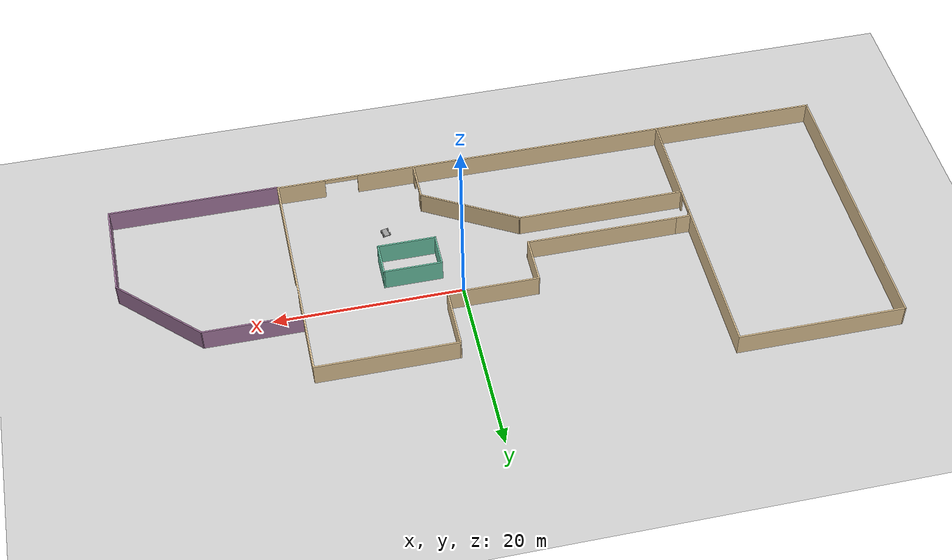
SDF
<sdf version="1.6">
 <world name="default">
  <model name="ground_plane">
   <static>1</static>
   <link name="link">
    <collision name="collision">
     <geometry><plane><normal>0 0 1</normal><size>100 100</size></plane></geometry>
     <surface>
      <contact><collide_bitmask>65535</collide_bitmask></contact>
      <friction><ode><mu>100</mu><mu2>50</mu2></ode></friction>
     </surface>
    </collision>
    <visual name="visual">
     <cast_shadows>0</cast_shadows>
     <geometry><plane><normal>0 0 1</normal><size>100 100</size></plane></geometry>
     <material>
      <script><uri>file://media/materials/scripts/gazebo.material</uri><name>Gazebo/Grey</name></script>
     </material>
    </visual>
   </link>
  </model>
  <model name="office">
   <pose>-3.92011 -1.24039 0 0 -0 0</pose>
   <link name="Wall_0">
    <collision name="Wall_0_Collision">
     <geometry><box><size>5.22347 0.15 2.5</size></box></geometry>
     <pose>0 0 1.25 0 -0 0</pose>
    </collision>
    <visual name="Wall_0_Visual">
     <pose>0 0 1.25 0 -0 0</pose>
     <geometry><box><size>5.22347 0.15 2.5</size></box></geometry>
     <material>
      <script><uri>file://media/materials/scripts/gazebo.material</uri><name>Gazebo/Grey</name></script>
      <ambient>0.921569 0.807843 0.615686 1</ambient>
     </material>
     <meta><layer>0</layer></meta>
    </visual>
    <pose>-3.65319 0.80369 0 0 -0 1.56555</pose>
   </link>
   <link name="Wall_1">
    <collision name="Wall_1_Collision">
     <geometry><box><size>9.75 0.15 2.5</size></box></geometry>
     <pose>0 0 1.25 0 -0 0</pose>
    </collision>
    <visual name="Wall_1_Visual">
     <pose>0 0 1.25 0 -0 0</pose>
     <geometry><box><size>9.75 0.15 2.5</size></box></geometry>
     <material>
      <script><uri>file://media/materials/scripts/gazebo.material</uri><name>Gazebo/Grey</name></script>
      <ambient>0.921569 0.807843 0.615686 1</ambient>
     </material>
     <meta><layer>0</layer></meta>
    </visual>
    <pose>1.16011 3.34039 0 0 -0 0</pose>
   </link>
   <link name="Wall_12">
    <collision name="Wall_12_Collision">
     <geometry><box><size>16.25 0.15 2.5</size></box></geometry>
     <pose>0 0 1.25 0 -0 0</pose>
    </collision>
    <visual name="Wall_12_Visual">
     <pose>0 0 1.25 0 -0 0</pose>
     <geometry><box><size>16.25 0.15 2.5</size></box></geometry>
     <material>
      <script><uri>file://media/materials/scripts/gazebo.material</uri><name>Gazebo/Grey</name></script>
      <ambient>0.921569 0.807843 0.615686 1</ambient>
     </material>
     <meta><layer>0</layer></meta>
    </visual>
    <pose>-11.7165 -1.75961 0 0 -0 3.14159</pose>
   </link>
   <link name="Wall_2">
    <collision name="Wall_2_Collision">
     <geometry><box><size>6.75 0.15 2.5</size></box></geometry>
     <pose>0 0 1.25 0 -0 0</pose>
    </collision>
    <visual name="Wall_2_Visual">
     <pose>0 0 1.25 0 -0 0</pose>
     <geometry><box><size>6.75 0.15 2.5</size></box></geometry>
     <material>
      <script><uri>file://media/materials/scripts/gazebo.material</uri><name>Gazebo/Grey</name></script>
      <ambient>0.921569 0.807843 0.615686 1</ambient>
     </material>
     <meta><layer>0</layer></meta>
    </visual>
    <pose>5.96011 6.64039 0 0 -0 1.5708</pose>
   </link>
   <link name="Wall_25">
    <collision name="Wall_25_Collision">
     <geometry><box><size>18.25 0.15 2.5</size></box></geometry>
     <pose>0 0 1.25 0 -0 0</pose>
    </collision>
    <visual name="Wall_25_Visual">
     <pose>0 0 1.25 0 -0 0</pose>
     <geometry><box><size>18.25 0.15 2.5</size></box></geometry>
     <material>
      <script><uri>file://media/materials/scripts/gazebo.material</uri><name>Gazebo/Grey</name></script>
      <ambient>0.678431 0.498039 0.658824 1</ambient>
     </material>
     <meta><layer>0</layer></meta>
    </visual>
    <pose>29.9204 -15.3405 0 0 -0 0</pose>
   </link>
   <link name="Wall_27">
    <pose>20.8453 -6.08461 0 0 -0 -1.56696</pose>
    <visual name="Wall_27_Visual_0">
     <pose>-7.53879 0 1.25 0 -0 0</pose>
     <geometry><box><size>3.42242 0.15 2.5</size></box></geometry>
     <material>
      <script><uri>file://media/materials/scripts/gazebo.material</uri><name>Gazebo/Grey</name></script>
      <ambient>0.921569 0.807843 0.615686 1</ambient>
     </material>
     <meta><layer>0</layer></meta>
    </visual>
    <collision name="Wall_27_Collision_0">
     <geometry><box><size>3.42242 0.15 2.5</size></box></geometry>
     <pose>-7.53879 0 1.25 0 -0 0</pose>
    </collision>
    <visual name="Wall_27_Visual_1">
     <pose>3.16381 0 1.25 0 -0 0</pose>
     <geometry><box><size>12.1724 0.15 2.5</size></box></geometry>
     <material>
      <script><uri>file://media/materials/scripts/gazebo.material</uri><name>Gazebo/Grey</name></script>
      <ambient>0.921569 0.807843 0.615686 1</ambient>
     </material>
     <meta><layer>0</layer></meta>
    </visual>
    <collision name="Wall_27_Collision_1">
     <geometry><box><size>12.1724 0.15 2.5</size></box></geometry>
     <pose>3.16381 0 1.25 0 -0 0</pose>
    </collision>
    <visual name="Wall_27_Visual_2">
     <pose>-4.37498 0 2.25 0 -0 0</pose>
     <geometry><box><size>2.90519 0.15 0.5</size></box></geometry>
     <material>
      <script><uri>file://media/materials/scripts/gazebo.material</uri><name>Gazebo/Grey</name></script>
      <ambient>0.921569 0.807843 0.615686 1</ambient>
     </material>
     <meta><layer>0</layer></meta>
    </visual>
    <collision name="Wall_27_Collision_2">
     <geometry><box><size>2.90519 0.15 0.5</size></box></geometry>
     <pose>-4.37498 0 2.25 0 -0 0</pose>
    </collision>
   </link>
   <link name="Wall_28">
    <collision name="Wall_28_Collision">
     <geometry><box><size>18 0.15 2.5</size></box></geometry>
     <pose>0 0 1.25 0 -0 0</pose>
    </collision>
    <visual name="Wall_28_Visual">
     <pose>0 0 1.25 0 -0 0</pose>
     <geometry><box><size>18 0.15 2.5</size></box></geometry>
     <material>
      <script><uri>file://media/materials/scripts/gazebo.material</uri><name>Gazebo/Grey</name></script>
      <ambient>0.921569 0.807843 0.615686 1</ambient>
     </material>
     <meta><layer>0</layer></meta>
    </visual>
    <pose>-12.5173 -5.35829 0 0 -0 0</pose>
   </link>
   <link name="Wall_3">
    <collision name="Wall_3_Collision">
     <geometry><box><size>15 0.15 2.5</size></box></geometry>
     <pose>0 0 1.25 0 -0 0</pose>
    </collision>
    <visual name="Wall_3_Visual">
     <pose>0 0 1.25 0 -0 0</pose>
     <geometry><box><size>15 0.15 2.5</size></box></geometry>
     <material>
      <script><uri>file://media/materials/scripts/gazebo.material</uri><name>Gazebo/Grey</name></script>
      <ambient>0.921569 0.807843 0.615686 1</ambient>
     </material>
     <meta><layer>0</layer></meta>
    </visual>
    <pose>13.3851 9.94039 0 0 -0 0</pose>
   </link>
   <link name="Wall_31">
    <pose>-9.07971 -15.2596 0 0 -0 3.14159</pose>
    <visual name="Wall_31_Visual_0">
     <pose>-27.4217 0 1.25 0 -0 0</pose>
     <geometry><box><size>5.15663 0.15 2.5</size></box></geometry>
     <material>
      <script><uri>file://media/materials/scripts/gazebo.material</uri><name>Gazebo/Grey</name></script>
      <ambient>0.921569 0.807843 0.615686 1</ambient>
     </material>
     <meta><layer>0</layer></meta>
    </visual>
    <collision name="Wall_31_Collision_0">
     <geometry><box><size>5.15663 0.15 2.5</size></box></geometry>
     <pose>-27.4217 0 1.25 0 -0 0</pose>
    </collision>
    <visual name="Wall_31_Visual_1">
     <pose>4.35425 0 1.25 0 -0 0</pose>
     <geometry><box><size>51.2915 0.15 2.5</size></box></geometry>
     <material>
      <script><uri>file://media/materials/scripts/gazebo.material</uri><name>Gazebo/Grey</name></script>
      <ambient>0.921569 0.807843 0.615686 1</ambient>
     </material>
     <meta><layer>0</layer></meta>
    </visual>
    <collision name="Wall_31_Collision_1">
     <geometry><box><size>51.2915 0.15 2.5</size></box></geometry>
     <pose>4.35425 0 1.25 0 -0 0</pose>
    </collision>
    <visual name="Wall_31_Visual_2">
     <pose>-23.0674 0 2.25 0 -0 0</pose>
     <geometry><box><size>3.55186 0.15 0.5</size></box></geometry>
     <material>
      <script><uri>file://media/materials/scripts/gazebo.material</uri><name>Gazebo/Grey</name></script>
      <ambient>0.921569 0.807843 0.615686 1</ambient>
     </material>
     <meta><layer>0</layer></meta>
    </visual>
    <collision name="Wall_31_Collision_2">
     <geometry><box><size>3.55186 0.15 0.5</size></box></geometry>
     <pose>-23.0674 0 2.25 0 -0 0</pose>
    </collision>
   </link>
   <link name="Wall_32">
    <collision name="Wall_32_Collision">
     <geometry><box><size>30.75 0.15 2.5</size></box></geometry>
     <pose>0 0 1.25 0 -0 0</pose>
    </collision>
    <visual name="Wall_32_Visual">
     <pose>0 0 1.25 0 -0 0</pose>
     <geometry><box><size>30.75 0.15 2.5</size></box></geometry>
     <material>
      <script><uri>file://media/materials/scripts/gazebo.material</uri><name>Gazebo/Grey</name></script>
      <ambient>0.921569 0.807843 0.615686 1</ambient>
     </material>
     <meta><layer>0</layer></meta>
    </visual>
    <pose>-39.0047 0.04039 0 0 -0 1.5731</pose>
   </link>
   <link name="Wall_33">
    <collision name="Wall_33_Collision">
     <geometry><box><size>17.75 0.15 2.5</size></box></geometry>
     <pose>0 0 1.25 0 -0 0</pose>
    </collision>
    <visual name="Wall_33_Visual">
     <pose>0 0 1.25 0 -0 0</pose>
     <geometry><box><size>17.75 0.15 2.5</size></box></geometry>
     <material>
      <script><uri>file://media/materials/scripts/gazebo.material</uri><name>Gazebo/Grey</name></script>
      <ambient>0.921569 0.807843 0.615686 1</ambient>
     </material>
     <meta><layer>0</layer></meta>
    </visual>
    <pose>-30.2399 15.3404 0 0 -0 0</pose>
   </link>
   <link name="Wall_34">
    <pose>-21.4399 0.04039 0 0 -0 -1.5708</pose>
    <visual name="Wall_34_Visual_0">
     <pose>-6.3674 0 1.25 0 -0 0</pose>
     <geometry><box><size>18.0152 0.15 2.5</size></box></geometry>
     <material>
      <script><uri>file://media/materials/scripts/gazebo.material</uri><name>Gazebo/Grey</name></script>
      <ambient>0.921569 0.807843 0.615686 1</ambient>
     </material>
     <meta><layer>0</layer></meta>
    </visual>
    <collision name="Wall_34_Collision_0">
     <geometry><box><size>18.0152 0.15 2.5</size></box></geometry>
     <pose>-6.3674 0 1.25 0 -0 0</pose>
    </collision>
    <visual name="Wall_34_Visual_1">
     <pose>10.1 0 1.25 0 -0 0</pose>
     <geometry><box><size>10.55 0.15 2.5</size></box></geometry>
     <material>
      <script><uri>file://media/materials/scripts/gazebo.material</uri><name>Gazebo/Grey</name></script>
      <ambient>0.921569 0.807843 0.615686 1</ambient>
     </material>
     <meta><layer>0</layer></meta>
    </visual>
    <collision name="Wall_34_Collision_1">
     <geometry><box><size>10.55 0.15 2.5</size></box></geometry>
     <pose>10.1 0 1.25 0 -0 0</pose>
    </collision>
    <visual name="Wall_34_Visual_2">
     <pose>3.7326 0 2.25 0 -0 0</pose>
     <geometry><box><size>2.18479 0.15 0.5</size></box></geometry>
     <material>
      <script><uri>file://media/materials/scripts/gazebo.material</uri><name>Gazebo/Grey</name></script>
      <ambient>0.921569 0.807843 0.615686 1</ambient>
     </material>
     <meta><layer>0</layer></meta>
    </visual>
    <collision name="Wall_34_Collision_2">
     <geometry><box><size>2.18479 0.15 0.5</size></box></geometry>
     <pose>3.7326 0 2.25 0 -0 0</pose>
    </collision>
   </link>
   <link name="Wall_36">
    <collision name="Wall_36_Collision">
     <geometry><box><size>1.75 0.15 2.5</size></box></geometry>
     <pose>0 0 1.25 0 -0 0</pose>
    </collision>
    <visual name="Wall_36_Visual">
     <pose>0 0 1.25 0 -0 0</pose>
     <geometry><box><size>1.75 0.15 2.5</size></box></geometry>
     <material>
      <script><uri>file://media/materials/scripts/gazebo.material</uri><name>Gazebo/Grey</name></script>
      <ambient>0.921569 0.807843 0.615686 1</ambient>
     </material>
     <meta><layer>0</layer></meta>
    </visual>
    <pose>-20.5665 -1.75961 0 0 -0 3.14159</pose>
   </link>
   <link name="Wall_38">
    <collision name="Wall_38_Collision">
     <geometry><box><size>11.25 0.15 2.5</size></box></geometry>
     <pose>0 0 1.25 0 -0 0</pose>
    </collision>
    <visual name="Wall_38_Visual">
     <pose>0 0 1.25 0 -0 0</pose>
     <geometry><box><size>11.25 0.15 2.5</size></box></geometry>
     <material>
      <script><uri>file://media/materials/scripts/gazebo.material</uri><name>Gazebo/Grey</name></script>
      <ambient>0.921569 0.807843 0.615686 1</ambient>
     </material>
     <meta><layer>0</layer></meta>
    </visual>
    <pose>1.21412 -8.13329 0 0 -0 -0.523599</pose>
   </link>
   <link name="Wall_39">
    <pose>6.02056 -13.0833 0 0 -0 -1.5708</pose>
    <visual name="Wall_39_Visual_0">
     <pose>-1.78066 0 1.25 0 -0 0</pose>
     <geometry><box><size>0.938674 0.15 2.5</size></box></geometry>
     <material>
      <script><uri>file://media/materials/scripts/gazebo.material</uri><name>Gazebo/Grey</name></script>
      <ambient>0.921569 0.807843 0.615686 1</ambient>
     </material>
     <meta><layer>0</layer></meta>
    </visual>
    <collision name="Wall_39_Collision_0">
     <geometry><box><size>0.938674 0.15 2.5</size></box></geometry>
     <pose>-1.78066 0 1.25 0 -0 0</pose>
    </collision>
    <visual name="Wall_39_Visual_1">
     <pose>1.71425 0 1.25 0 -0 0</pose>
     <geometry><box><size>1.07151 0.15 2.5</size></box></geometry>
     <material>
      <script><uri>file://media/materials/scripts/gazebo.material</uri><name>Gazebo/Grey</name></script>
      <ambient>0.921569 0.807843 0.615686 1</ambient>
     </material>
     <meta><layer>0</layer></meta>
    </visual>
    <collision name="Wall_39_Collision_1">
     <geometry><box><size>1.07151 0.15 2.5</size></box></geometry>
     <pose>1.71425 0 1.25 0 -0 0</pose>
    </collision>
    <visual name="Wall_39_Visual_2">
     <pose>-0.066418 0 2.25 0 -0 0</pose>
     <geometry><box><size>2.48982 0.15 0.5</size></box></geometry>
     <material>
      <script><uri>file://media/materials/scripts/gazebo.material</uri><name>Gazebo/Grey</name></script>
      <ambient>0.921569 0.807843 0.615686 1</ambient>
     </material>
     <meta><layer>0</layer></meta>
    </visual>
    <collision name="Wall_39_Collision_2">
     <geometry><box><size>2.48982 0.15 0.5</size></box></geometry>
     <pose>-0.066418 0 2.25 0 -0 0</pose>
    </collision>
   </link>
   <link name="Wall_41">
    <collision name="Wall_41_Collision">
     <geometry><box><size>3.75 0.15 2.5</size></box></geometry>
     <pose>0 0 1.25 0 -0 0</pose>
    </collision>
    <visual name="Wall_41_Visual">
     <pose>0 0 1.25 0 -0 0</pose>
     <geometry><box><size>3.75 0.15 2.5</size></box></geometry>
     <material>
      <script><uri>file://media/materials/scripts/gazebo.material</uri><name>Gazebo/Grey</name></script>
      <ambient>0.435294 0.796078 0.67451 1</ambient>
     </material>
     <meta><layer>0</layer></meta>
    </visual>
    <pose>5.72064 -2.74195 0 0 -0 -1.5708</pose>
   </link>
   <link name="Wall_42">
    <collision name="Wall_42_Collision">
     <geometry><box><size>6.25 0.15 2.5</size></box></geometry>
     <pose>0 0 1.25 0 -0 0</pose>
    </collision>
    <visual name="Wall_42_Visual">
     <pose>0 0 1.25 0 -0 0</pose>
     <geometry><box><size>6.25 0.15 2.5</size></box></geometry>
     <material>
      <script><uri>file://media/materials/scripts/gazebo.material</uri><name>Gazebo/Grey</name></script>
      <ambient>0.435294 0.796078 0.67451 1</ambient>
     </material>
     <meta><layer>0</layer></meta>
    </visual>
    <pose>8.77064 -4.54195 0 0 -0 0</pose>
   </link>
   <link name="Wall_43">
    <collision name="Wall_43_Collision">
     <geometry><box><size>3.75 0.15 2.5</size></box></geometry>
     <pose>0 0 1.25 0 -0 0</pose>
    </collision>
    <visual name="Wall_43_Visual">
     <pose>0 0 1.25 0 -0 0</pose>
     <geometry><box><size>3.75 0.15 2.5</size></box></geometry>
     <material>
      <script><uri>file://media/materials/scripts/gazebo.material</uri><name>Gazebo/Grey</name></script>
      <ambient>0.435294 0.796078 0.67451 1</ambient>
     </material>
     <meta><layer>0</layer></meta>
    </visual>
    <pose>11.8206 -2.74195 0 0 -0 1.5708</pose>
   </link>
   <link name="Wall_44">
    <collision name="Wall_44_Collision">
     <geometry><box><size>6.25 0.15 2.5</size></box></geometry>
     <pose>0 0 1.25 0 -0 0</pose>
    </collision>
    <visual name="Wall_44_Visual">
     <pose>0 0 1.25 0 -0 0</pose>
     <geometry><box><size>6.25 0.15 2.5</size></box></geometry>
     <material>
      <script><uri>file://media/materials/scripts/gazebo.material</uri><name>Gazebo/Grey</name></script>
      <ambient>0.435294 0.796078 0.67451 1</ambient>
     </material>
     <meta><layer>0</layer></meta>
    </visual>
    <pose>8.77064 -0.941952 0 0 -0 3.14159</pose>
   </link>
   <link name="Wall_6">
    <collision name="Wall_6_Collision">
     <geometry><box><size>7 0.15 2.5</size></box></geometry>
     <pose>0 0 1.25 0 -0 0</pose>
    </collision>
    <visual name="Wall_6_Visual">
     <pose>0 0 1.25 0 -0 0</pose>
     <geometry><box><size>7 0.15 2.5</size></box></geometry>
     <material>
      <script><uri>file://media/materials/scripts/gazebo.material</uri><name>Gazebo/Grey</name></script>
      <ambient>0.921569 0.807843 0.615686 1</ambient>
     </material>
     <meta><layer>0</layer></meta>
    </visual>
    <pose>20.8101 6.51539 0 0 -0 -1.5708</pose>
   </link>
   <link name="Wall_7">
    <collision name="Wall_7_Collision">
     <geometry><box><size>10.5 0.15 2.5</size></box></geometry>
     <pose>0 0 1.25 0 -0 0</pose>
    </collision>
    <visual name="Wall_7_Visual">
     <pose>0 0 1.25 0 -0 0</pose>
     <geometry><box><size>10.5 0.15 2.5</size></box></geometry>
     <material>
      <script><uri>file://media/materials/scripts/gazebo.material</uri><name>Gazebo/Grey</name></script>
      <ambient>0.678431 0.498039 0.658824 1</ambient>
     </material>
     <meta><layer>0</layer></meta>
    </visual>
    <pose>25.9851 3.09039 0 0 -0 0</pose>
   </link>
   <link name="Wall_8">
    <collision name="Wall_8_Collision">
     <geometry><box><size>11.25 0.15 2.5</size></box></geometry>
     <pose>0 0 1.25 0 -0 0</pose>
    </collision>
    <visual name="Wall_8_Visual">
     <pose>0 0 1.25 0 -0 0</pose>
     <geometry><box><size>11.25 0.15 2.5</size></box></geometry>
     <material>
      <script><uri>file://media/materials/scripts/gazebo.material</uri><name>Gazebo/Grey</name></script>
      <ambient>0.678431 0.498039 0.658824 1</ambient>
     </material>
     <meta><layer>0</layer></meta>
    </visual>
    <pose>35.0846 -0.834053 0 0 -0 -0.785398</pose>
   </link>
   <link name="Wall_9">
    <collision name="Wall_9_Collision">
     <geometry><box><size>10.7102 0.15 2.5</size></box></geometry>
     <pose>0 0 1.25 0 -0 0</pose>
    </collision>
    <visual name="Wall_9_Visual">
     <pose>0 0 1.25 0 -0 0</pose>
     <geometry><box><size>10.7102 0.15 2.5</size></box></geometry>
     <material>
      <script><uri>file://media/materials/scripts/gazebo.material</uri><name>Gazebo/Grey</name></script>
      <ambient>0.678431 0.498039 0.658824 1</ambient>
     </material>
     <meta><layer>0</layer></meta>
    </visual>
    <pose>39.009 -10.0383 0 0 -0 -1.5708</pose>
   </link>
   <static>1</static>
  </model>
  <model name="robot_0">
   <link name="link_0">
    <inertial>
     <mass>1</mass>
     <inertia>
      <ixx>0.166667</ixx>
      <ixy>0</ixy>
      <ixz>0</ixz>
      <iyy>0.166667</iyy>
      <iyz>0</iyz>
      <izz>0.166667</izz>
     </inertia>
    </inertial>
    <visual name="visual">
     <geometry><box><size>1 0.6 0.1</size></box></geometry>
     <material>
      <lighting>1</lighting>
      <script><uri>file://media/materials/scripts/gazebo.material</uri><name>Gazebo/Grey</name></script>
      <shader type="vertex"><normal_map>__default__</normal_map></shader>
      <ambient>0.3 0.3 0.3 1</ambient>
      <diffuse>0.7 0.7 0.7 1</diffuse>
      <specular>0.01 0.01 0.01 1</specular>
      <emissive>0 0 0 1</emissive>
     </material>
    </visual>
    <collision name="collision">
     <geometry><box><size>1 0.6 0.1</size></box></geometry>
     <surface>
      <friction>
       <ode><mu>1</mu><mu2>1</mu2><fdir1>0 0 0</fdir1><slip1>0</slip1><slip2>0</slip2></ode>
       <torsional>
        <coefficient>1</coefficient>
        <patch_radius>0</patch_radius>
        <surface_radius>0</surface_radius>
        <use_patch_radius>1</use_patch_radius>
        <ode><slip>0</slip></ode>
       </torsional>
      </friction>
      <bounce><restitution_coefficient>0</restitution_coefficient><threshold>1e+06</threshold></bounce>
      <contact>
       <collide_without_contact>0</collide_without_contact>
       <collide_without_contact_bitmask>1</collide_without_contact_bitmask>
       <collide_bitmask>1</collide_bitmask>
       <ode>
        <soft_cfm>0</soft_cfm>
        <soft_erp>0.2</soft_erp>
        <kp>1e+13</kp>
        <kd>1</kd>
        <max_vel>0.01</max_vel>
        <min_depth>0</min_depth>
       </ode>
       <bullet>
        <split_impulse>1</split_impulse>
        <split_impulse_penetration_threshold>-0.01</split_impulse_penetration_threshold>
        <soft_cfm>0</soft_cfm>
        <soft_erp>0.2</soft_erp>
        <kp>1e+13</kp>
        <kd>1</kd>
       </bullet>
      </contact>
     </surface>
    </collision>
   </link>
   <link name="link_1">
    <inertial>
     <mass>1</mass>
     <inertia><ixx>0.145833</ixx><ixy>0</ixy><ixz>0</ixz><iyy>0.145833</iyy><iyz>0</iyz><izz>0.125</izz></inertia>
    </inertial>
    <pose>-0.3 -0.349999 -0 1.5707 -0 0</pose>
    <visual name="visual">
     <geometry><cylinder><radius>0.2</radius><length>0.1</length></cylinder></geometry>
     <material>
      <lighting>1</lighting>
      <script><uri>file://media/materials/scripts/gazebo.material</uri><name>Gazebo/Grey</name></script>
      <shader type="vertex"><normal_map>__default__</normal_map></shader>
      <ambient>0.3 0.3 0.3 1</ambient>
      <diffuse>0.7 0.7 0.7 1</diffuse>
      <specular>0.01 0.01 0.01 1</specular>
      <emissive>0 0 0 1</emissive>
     </material>
    </visual>
    <collision name="collision">
     <geometry><cylinder><radius>0.2</radius><length>0.1</length></cylinder></geometry>
     <surface>
      <friction>
       <ode><mu>1</mu><mu2>1</mu2><fdir1>0 0 0</fdir1><slip1>0</slip1><slip2>0</slip2></ode>
       <torsional>
        <coefficient>1</coefficient>
        <patch_radius>0</patch_radius>
        <surface_radius>0</surface_radius>
        <use_patch_radius>1</use_patch_radius>
        <ode><slip>0</slip></ode>
       </torsional>
      </friction>
      <bounce><restitution_coefficient>0</restitution_coefficient><threshold>1e+06</threshold></bounce>
      <contact>
       <collide_without_contact>0</collide_without_contact>
       <collide_without_contact_bitmask>1</collide_without_contact_bitmask>
       <collide_bitmask>1</collide_bitmask>
       <ode>
        <soft_cfm>0</soft_cfm>
        <soft_erp>0.2</soft_erp>
        <kp>1e+13</kp>
        <kd>1</kd>
        <max_vel>0.01</max_vel>
        <min_depth>0</min_depth>
       </ode>
       <bullet>
        <split_impulse>1</split_impulse>
        <split_impulse_penetration_threshold>-0.01</split_impulse_penetration_threshold>
        <soft_cfm>0</soft_cfm>
        <soft_erp>0.2</soft_erp>
        <kp>1e+13</kp>
        <kd>1</kd>
       </bullet>
      </contact>
     </surface>
    </collision>
   </link>
   <link name="link_1_clone">
    <inertial>
     <mass>1</mass>
     <inertia><ixx>0.145833</ixx><ixy>0</ixy><ixz>0</ixz><iyy>0.145833</iyy><iyz>0</iyz><izz>0.125</izz></inertia>
    </inertial>
    <pose>-0.3 0.350001 -0 1.5707 -0 0</pose>
    <visual name="visual">
     <geometry><cylinder><radius>0.2</radius><length>0.1</length></cylinder></geometry>
     <material>
      <lighting>1</lighting>
      <script><uri>file://media/materials/scripts/gazebo.material</uri><name>Gazebo/Grey</name></script>
      <shader type="vertex"><normal_map>__default__</normal_map></shader>
      <ambient>0.3 0.3 0.3 1</ambient>
      <diffuse>0.7 0.7 0.7 1</diffuse>
      <specular>0.01 0.01 0.01 1</specular>
      <emissive>0 0 0 1</emissive>
     </material>
    </visual>
    <collision name="collision">
     <geometry><cylinder><radius>0.2</radius><length>0.1</length></cylinder></geometry>
     <surface>
      <friction>
       <ode><mu>1</mu><mu2>1</mu2><fdir1>0 0 0</fdir1><slip1>0</slip1><slip2>0</slip2></ode>
       <torsional>
        <coefficient>1</coefficient>
        <patch_radius>0</patch_radius>
        <surface_radius>0</surface_radius>
        <use_patch_radius>1</use_patch_radius>
        <ode><slip>0</slip></ode>
       </torsional>
      </friction>
      <bounce><restitution_coefficient>0</restitution_coefficient><threshold>1e+06</threshold></bounce>
      <contact>
       <collide_without_contact>0</collide_without_contact>
       <collide_without_contact_bitmask>1</collide_without_contact_bitmask>
       <collide_bitmask>1</collide_bitmask>
       <ode>
        <soft_cfm>0</soft_cfm>
        <soft_erp>0.2</soft_erp>
        <kp>1e+13</kp>
        <kd>1</kd>
        <max_vel>0.01</max_vel>
        <min_depth>0</min_depth>
       </ode>
       <bullet>
        <split_impulse>1</split_impulse>
        <split_impulse_penetration_threshold>-0.01</split_impulse_penetration_threshold>
        <soft_cfm>0</soft_cfm>
        <soft_erp>0.2</soft_erp>
        <kp>1e+13</kp>
        <kd>1</kd>
       </bullet>
      </contact>
     </surface>
    </collision>
   </link>
   <link name="link_1_clone_clone">
    <inertial>
     <mass>1</mass>
     <inertia><ixx>0.145833</ixx><ixy>0</ixy><ixz>0</ixz><iyy>0.145833</iyy><iyz>0</iyz><izz>0.125</izz></inertia>
    </inertial>
    <pose>0.3 0.349999 0 1.5707 -0 0</pose>
    <visual name="visual">
     <geometry><cylinder><radius>0.2</radius><length>0.1</length></cylinder></geometry>
     <material>
      <lighting>1</lighting>
      <script><uri>file://media/materials/scripts/gazebo.material</uri><name>Gazebo/Grey</name></script>
      <shader type="vertex"><normal_map>__default__</normal_map></shader>
      <ambient>0.3 0.3 0.3 1</ambient>
      <diffuse>0.7 0.7 0.7 1</diffuse>
      <specular>0.01 0.01 0.01 1</specular>
      <emissive>0 0 0 1</emissive>
     </material>
    </visual>
    <collision name="collision">
     <geometry><cylinder><radius>0.2</radius><length>0.1</length></cylinder></geometry>
     <surface>
      <friction>
       <ode><mu>1</mu><mu2>1</mu2><fdir1>0 0 0</fdir1><slip1>0</slip1><slip2>0</slip2></ode>
       <torsional>
        <coefficient>1</coefficient>
        <patch_radius>0</patch_radius>
        <surface_radius>0</surface_radius>
        <use_patch_radius>1</use_patch_radius>
        <ode><slip>0</slip></ode>
       </torsional>
      </friction>
      <bounce><restitution_coefficient>0</restitution_coefficient><threshold>1e+06</threshold></bounce>
      <contact>
       <collide_without_contact>0</collide_without_contact>
       <collide_without_contact_bitmask>1</collide_without_contact_bitmask>
       <collide_bitmask>1</collide_bitmask>
       <ode>
        <soft_cfm>0</soft_cfm>
        <soft_erp>0.2</soft_erp>
        <kp>1e+13</kp>
        <kd>1</kd>
        <max_vel>0.01</max_vel>
        <min_depth>0</min_depth>
       </ode>
       <bullet>
        <split_impulse>1</split_impulse>
        <split_impulse_penetration_threshold>-0.01</split_impulse_penetration_threshold>
        <soft_cfm>0</soft_cfm>
        <soft_erp>0.2</soft_erp>
        <kp>1e+13</kp>
        <kd>1</kd>
       </bullet>
      </contact>
     </surface>
    </collision>
   </link>
   <link name="link_1_clone_clone_0">
    <inertial>
     <mass>1</mass>
     <inertia><ixx>0.145833</ixx><ixy>0</ixy><ixz>0</ixz><iyy>0.145833</iyy><iyz>0</iyz><izz>0.125</izz></inertia>
    </inertial>
    <pose>0.3 -0.350001 0 1.5707 -0 0</pose>
    <visual name="visual">
     <geometry><cylinder><radius>0.2</radius><length>0.1</length></cylinder></geometry>
     <material>
      <lighting>1</lighting>
      <script><uri>file://media/materials/scripts/gazebo.material</uri><name>Gazebo/Grey</name></script>
      <shader type="vertex"><normal_map>__default__</normal_map></shader>
      <ambient>0.3 0.3 0.3 1</ambient>
      <diffuse>0.7 0.7 0.7 1</diffuse>
      <specular>0.01 0.01 0.01 1</specular>
      <emissive>0 0 0 1</emissive>
     </material>
    </visual>
    <collision name="collision">
     <geometry><cylinder><radius>0.2</radius><length>0.1</length></cylinder></geometry>
     <surface>
      <friction>
       <ode><mu>1</mu><mu2>1</mu2><fdir1>0 0 0</fdir1><slip1>0</slip1><slip2>0</slip2></ode>
       <torsional>
        <coefficient>1</coefficient>
        <patch_radius>0</patch_radius>
        <surface_radius>0</surface_radius>
        <use_patch_radius>1</use_patch_radius>
        <ode><slip>0</slip></ode>
       </torsional>
      </friction>
      <bounce><restitution_coefficient>0</restitution_coefficient><threshold>1e+06</threshold></bounce>
      <contact>
       <collide_without_contact>0</collide_without_contact>
       <collide_without_contact_bitmask>1</collide_without_contact_bitmask>
       <collide_bitmask>1</collide_bitmask>
       <ode>
        <soft_cfm>0</soft_cfm>
        <soft_erp>0.2</soft_erp>
        <kp>1e+13</kp>
        <kd>1</kd>
        <max_vel>0.01</max_vel>
        <min_depth>0</min_depth>
       </ode>
       <bullet>
        <split_impulse>1</split_impulse>
        <split_impulse_penetration_threshold>-0.01</split_impulse_penetration_threshold>
        <soft_cfm>0</soft_cfm>
        <soft_erp>0.2</soft_erp>
        <kp>1e+13</kp>
        <kd>1</kd>
       </bullet>
      </contact>
     </surface>
    </collision>
   </link>
   <joint name="link_0_JOINT_0" type="revolute">
    <parent>link_0</parent>
    <child>link_1_clone</child>
    <axis>
     <xyz>0 0 1</xyz>
     <use_parent_model_frame>0</use_parent_model_frame>
     <limit>
      <lower>-1.79769e+308</lower>
      <upper>1.79769e+308</upper>
      <effort>-1</effort>
      <velocity>-1</velocity>
     </limit>
     <dynamics>
      <spring_reference>0</spring_reference>
      <spring_stiffness>0</spring_stiffness>
      <damping>0</damping>
     </dynamics>
    </axis>
    <physics>
     <ode><limit><cfm>0</cfm><erp>0.2</erp></limit><suspension><cfm>0</cfm><erp>0.2</erp></suspension></ode>
    </physics>
   </joint>
   <joint name="link_0_JOINT_1" type="revolute">
    <parent>link_0</parent>
    <child>link_1</child>
    <axis>
     <xyz>0 0 1</xyz>
     <use_parent_model_frame>0</use_parent_model_frame>
     <limit>
      <lower>-1.79769e+308</lower>
      <upper>1.79769e+308</upper>
      <effort>-1</effort>
      <velocity>-1</velocity>
     </limit>
     <dynamics>
      <spring_reference>0</spring_reference>
      <spring_stiffness>0</spring_stiffness>
      <damping>0</damping>
     </dynamics>
    </axis>
    <physics>
     <ode><limit><cfm>0</cfm><erp>0.2</erp></limit><suspension><cfm>0</cfm><erp>0.2</erp></suspension></ode>
    </physics>
   </joint>
   <joint name="link_0_JOINT_2" type="revolute">
    <parent>link_0</parent>
    <child>link_1_clone_clone</child>
    <axis>
     <xyz>0 0 1</xyz>
     <use_parent_model_frame>0</use_parent_model_frame>
     <limit>
      <lower>-1.79769e+308</lower>
      <upper>1.79769e+308</upper>
      <effort>-1</effort>
      <velocity>-1</velocity>
     </limit>
     <dynamics>
      <spring_reference>0</spring_reference>
      <spring_stiffness>0</spring_stiffness>
      <damping>0</damping>
      <friction>0</friction>
     </dynamics>
    </axis>
    <physics>
     <ode><limit><cfm>0</cfm><erp>0.2</erp></limit><suspension><cfm>0</cfm><erp>0.2</erp></suspension></ode>
    </physics>
   </joint>
   <joint name="link_0_JOINT_3" type="revolute">
    <parent>link_0</parent>
    <child>link_1_clone_clone_0</child>
    <axis>
     <xyz>0 0 1</xyz>
     <use_parent_model_frame>0</use_parent_model_frame>
     <limit>
      <lower>-1.79769e+308</lower>
      <upper>1.79769e+308</upper>
      <effort>-1</effort>
      <velocity>-1</velocity>
     </limit>
     <dynamics>
      <spring_reference>0</spring_reference>
      <spring_stiffness>0</spring_stiffness>
      <damping>0</damping>
     </dynamics>
    </axis>
    <physics>
     <ode><limit><cfm>0</cfm><erp>0.2</erp></limit><suspension><cfm>0</cfm><erp>0.2</erp></suspension></ode>
    </physics>
   </joint>
   <static>0</static>
   <pose>6.5115 -9.61211 0.2 0 1.6e-05 -1.36738</pose>
  </model>
 </world>
</sdf>
